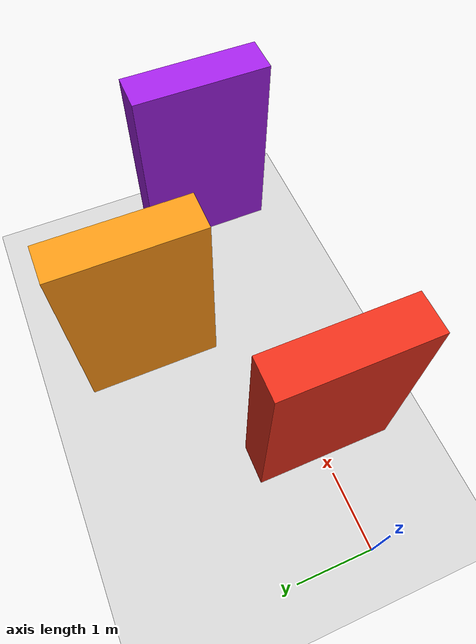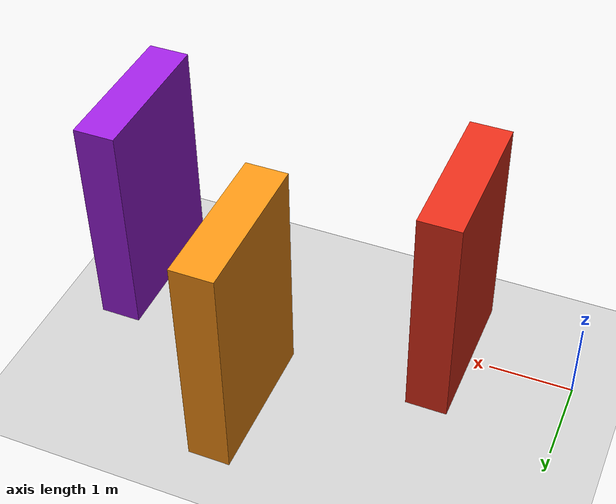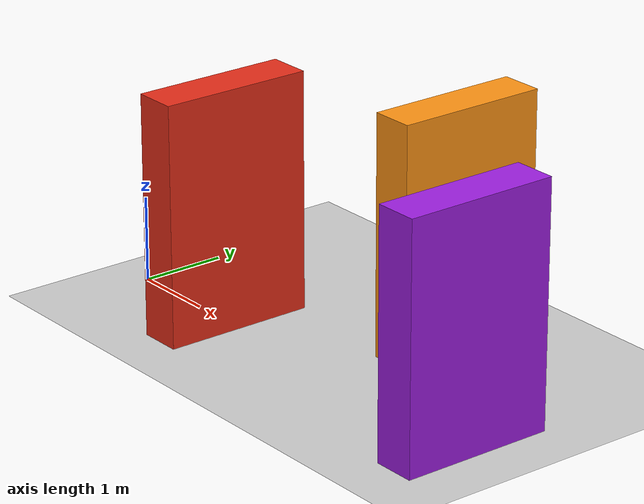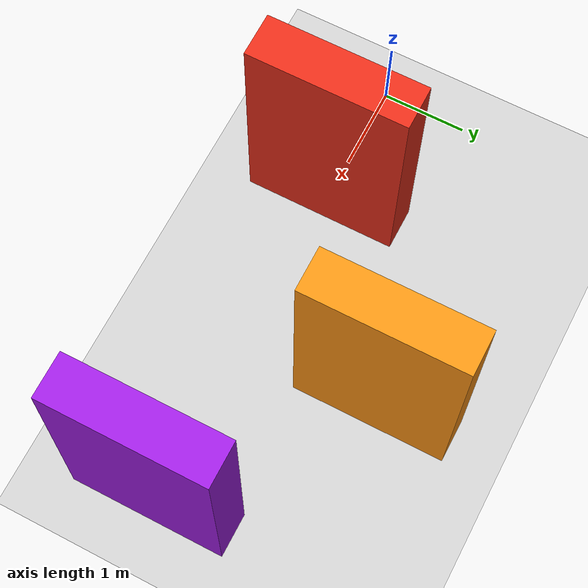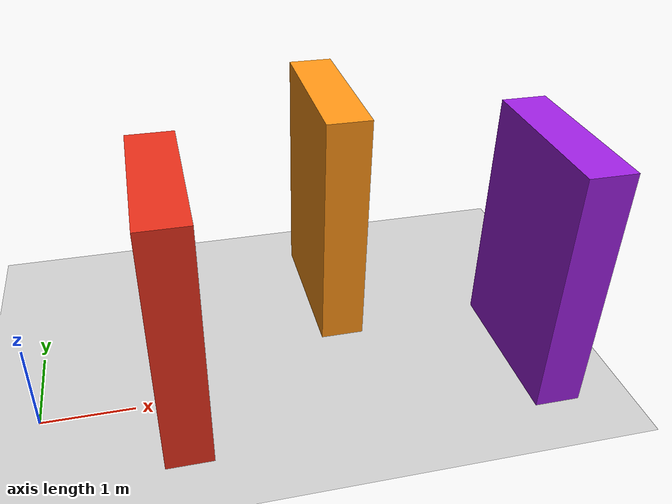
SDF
<?xml version="1.0"?>
<sdf version="1.6">
  <world name="quadcopter_world">
    <include><uri>model://sun</uri></include>
    <include><uri>model://ground_plane</uri></include>
    <physics name="physics" type="ode"><max_step_size>0.002</max_step_size><real_time_update_rate>500</real_time_update_rate></physics>
    <model name="obstacle_1">
      <static>true</static><pose>1.5 0 1.4 0 0 0</pose>
      <link name="link">
        <collision name="collision"><geometry><box><size>0.5 1.8 2.8</size></box></geometry></collision>
        <visual name="visual"><geometry><box><size>0.5 1.8 2.8</size></box></geometry>
          <material><ambient>0.75 0.12 0.08 1</ambient><diffuse>0.90 0.18 0.10 1</diffuse></material>
        </visual>
      </link>
    </model>
    <model name="obstacle_2">
      <static>true</static><pose>3.5 1.6 1.4 0 0 0</pose>
      <link name="link">
        <collision name="collision"><geometry><box><size>0.5 1.8 2.8</size></box></geometry></collision>
        <visual name="visual"><geometry><box><size>0.5 1.8 2.8</size></box></geometry>
          <material><ambient>0.90 0.48 0.05 1</ambient><diffuse>1.00 0.58 0.08 1</diffuse></material>
        </visual>
      </link>
    </model>
    <model name="obstacle_3">
      <static>true</static><pose>5.5 0 1.4 0 0 0</pose>
      <link name="link">
        <collision name="collision"><geometry><box><size>0.5 1.8 2.8</size></box></geometry></collision>
        <visual name="visual"><geometry><box><size>0.5 1.8 2.8</size></box></geometry>
          <material><ambient>0.50 0.08 0.72 1</ambient><diffuse>0.62 0.12 0.88 1</diffuse></material>
        </visual>
      </link>
    </model>
  </world>
</sdf>
